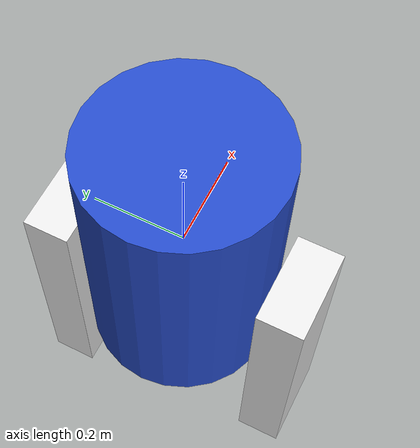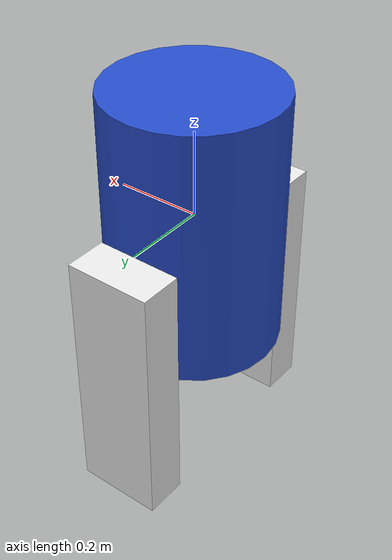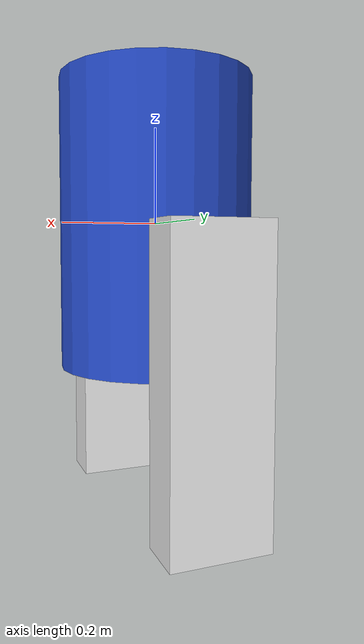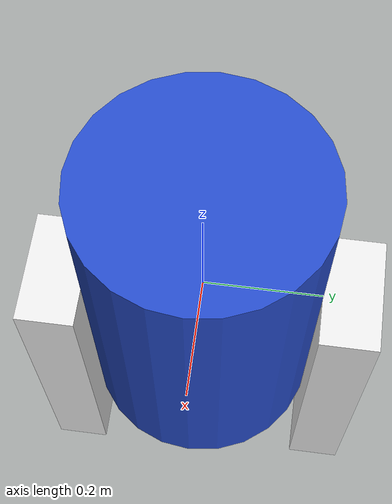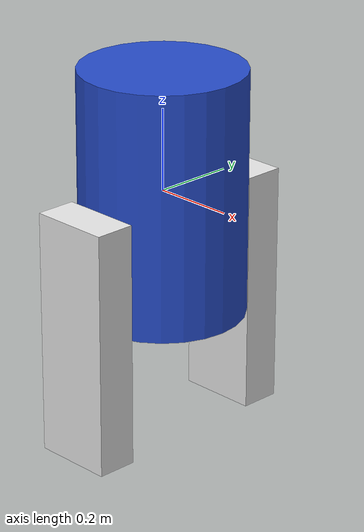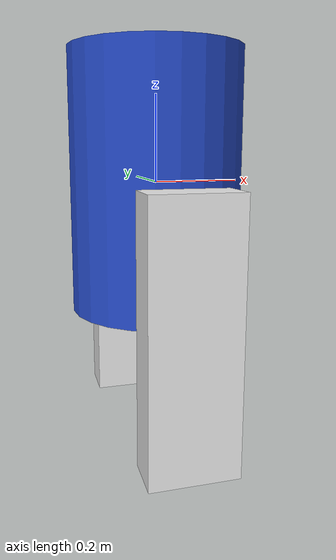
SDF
<?xml version='1.0'?>
<sdf version='1.6'>
  <model name='R2D2'>
    <link name='base_link'>
      <pose frame=''>0 -0 0 0 -0 0</pose>
      <inertial>
        <mass>1</mass>
        <inertia>
          <ixx>0.145833</ixx>
          <ixy>0</ixy>
          <ixz>0</ixz>
          <iyy>0.145833</iyy>
          <iyz>0</iyz>
          <izz>0.125</izz>
        </inertia>
        <pose frame=''>0 0 0 0 -0 0</pose>
      </inertial>
      <gravity>1</gravity>
      <self_collide>0</self_collide>
      <kinematic>0</kinematic>
      <visual name='visual'>
        <pose frame=''>0 0 0 0 -0 0</pose>
        <geometry>
          <cylinder>
            <radius>0.2</radius>
            <length>0.6</length>
          </cylinder>
        </geometry>
        <material>
          <lighting>1</lighting>
          <script>
            <uri>file://media/materials/scripts/gazebo.material</uri>
            <name>Gazebo/Blue</name>
          </script>
          <ambient>0.3 0.3 0.3 1</ambient>
          <diffuse>0.7 0.7 0.7 1</diffuse>
          <specular>0.01 0.01 0.01 1</specular>
          <emissive>0 0 0 1</emissive>
          <shader type='vertex'>
            <normal_map>__default__</normal_map>
          </shader>
        </material>
        <transparency>0</transparency>
        <cast_shadows>1</cast_shadows>
      </visual>
      <collision name='collision'>
        <laser_retro>0</laser_retro>
        <max_contacts>10</max_contacts>
        <pose frame=''>0 0 0 0 -0 0</pose>
        <geometry>
          <cylinder>
            <radius>0.2</radius>
            <length>0.6</length>
          </cylinder>
        </geometry>
        <surface>
          <friction>
            <ode>
              <mu>1</mu>
              <mu2>1</mu2>
              <fdir1>0 0 0</fdir1>
              <slip1>0</slip1>
              <slip2>0</slip2>
            </ode>
            <torsional>
              <coefficient>1</coefficient>
              <patch_radius>0</patch_radius>
              <surface_radius>0</surface_radius>
              <use_patch_radius>1</use_patch_radius>
              <ode>
                <slip>0</slip>
              </ode>
            </torsional>
          </friction>
          <bounce>
            <restitution_coefficient>0</restitution_coefficient>
            <threshold>1e+06</threshold>
          </bounce>
          <contact>
            <collide_without_contact>0</collide_without_contact>
            <collide_without_contact_bitmask>1</collide_without_contact_bitmask>
            <collide_bitmask>1</collide_bitmask>
            <ode>
              <soft_cfm>0</soft_cfm>
              <soft_erp>0.2</soft_erp>
              <kp>1e+13</kp>
              <kd>1</kd>
              <max_vel>0.01</max_vel>
              <min_depth>0</min_depth>
            </ode>
            <bullet>
              <split_impulse>1</split_impulse>
              <split_impulse_penetration_threshold>-0.01</split_impulse_penetration_threshold>
              <soft_cfm>0</soft_cfm>
              <soft_erp>0.2</soft_erp>
              <kp>1e+13</kp>
              <kd>1</kd>
            </bullet>
          </contact>
        </surface>
      </collision>
    </link>
    <link name='right_leg'>
      <pose frame=''>-0.013326 0.25 0 0 -0 0</pose>
      <inertial>
        <mass>1</mass>
        <inertia>
          <ixx>0.166667</ixx>
          <ixy>0</ixy>
          <ixz>0</ixz>
          <iyy>0.166667</iyy>
          <iyz>0</iyz>
          <izz>0.166667</izz>
        </inertia>
        <pose frame=''>0 0 0 0 -0 0</pose>
      </inertial>
      <gravity>1</gravity>
      <self_collide>0</self_collide>
      <kinematic>0</kinematic>
      <visual name='visual'>
        <pose frame=''>0 0 -0.3 0 1.57075 0</pose>
        <geometry>
          <box>
            <size>0.6 0.1 0.2</size>
          </box>
        </geometry>
        <material>
          <lighting>1</lighting>
          <script>
            <uri>file://media/materials/scripts/gazebo.material</uri>
            <name>Gazebo/White</name>
          </script>
          <ambient>0.3 0.3 0.3 1</ambient>
          <diffuse>0.7 0.7 0.7 1</diffuse>
          <specular>0.01 0.01 0.01 1</specular>
          <emissive>0 0 0 1</emissive>
          <shader type='vertex'>
            <normal_map>__default__</normal_map>
          </shader>
        </material>
        <transparency>0</transparency>
        <cast_shadows>1</cast_shadows>
      </visual>
      <collision name='collision'>
        <laser_retro>0</laser_retro>
        <max_contacts>10</max_contacts>
        <pose frame=''>0 0 -0.3 0 1.57075 0</pose>
        <geometry>
          <box>
            <size>0.6 0.1 0.2</size>
          </box>
        </geometry>
        <surface>
          <friction>
            <ode>
              <mu>1</mu>
              <mu2>1</mu2>
              <fdir1>0 0 0</fdir1>
              <slip1>0</slip1>
              <slip2>0</slip2>
            </ode>
            <torsional>
              <coefficient>1</coefficient>
              <patch_radius>0</patch_radius>
              <surface_radius>0</surface_radius>
              <use_patch_radius>1</use_patch_radius>
              <ode>
                <slip>0</slip>
              </ode>
            </torsional>
          </friction>
          <bounce>
            <restitution_coefficient>0</restitution_coefficient>
            <threshold>1e+06</threshold>
          </bounce>
          <contact>
            <collide_without_contact>0</collide_without_contact>
            <collide_without_contact_bitmask>1</collide_without_contact_bitmask>
            <collide_bitmask>1</collide_bitmask>
            <ode>
              <soft_cfm>0</soft_cfm>
              <soft_erp>0.2</soft_erp>
              <kp>1e+13</kp>
              <kd>1</kd>
              <max_vel>0.01</max_vel>
              <min_depth>0</min_depth>
            </ode>
            <bullet>
              <split_impulse>1</split_impulse>
              <split_impulse_penetration_threshold>-0.01</split_impulse_penetration_threshold>
              <soft_cfm>0</soft_cfm>
              <soft_erp>0.2</soft_erp>
              <kp>1e+13</kp>
              <kd>1</kd>
            </bullet>
          </contact>
        </surface>
      </collision>
    </link>
    <link name='left_leg'>
      <pose frame=''>0.006667 -0.25 0 0 -0 0</pose>
      <inertial>
        <mass>1</mass>
        <inertia>
          <ixx>0.166667</ixx>
          <ixy>0</ixy>
          <ixz>0</ixz>
          <iyy>0.166667</iyy>
          <iyz>0</iyz>
          <izz>0.166667</izz>
        </inertia>
        <pose frame=''>0 0 0 0 -0 0</pose>
      </inertial>
      <self_collide>0</self_collide>
      <kinematic>0</kinematic>
      <visual name='visual'>
        <pose frame=''>0 0 -0.3 0 1.57075 0</pose>
        <geometry>
          <box>
            <size>0.6 0.1 0.2</size>
          </box>
        </geometry>
        <material>
          <lighting>1</lighting>
          <script>
            <uri>file://media/materials/scripts/gazebo.material</uri>
            <name>Gazebo/White</name>
          </script>
          <ambient>0.3 0.3 0.3 1</ambient>
          <diffuse>0.7 0.7 0.7 1</diffuse>
          <specular>0.01 0.01 0.01 1</specular>
          <emissive>0 0 0 1</emissive>
          <shader type='vertex'>
            <normal_map>__default__</normal_map>
          </shader>
        </material>
        <transparency>0</transparency>
        <cast_shadows>1</cast_shadows>
      </visual>
      <collision name='collision'>
        <laser_retro>0</laser_retro>
        <max_contacts>10</max_contacts>
        <pose frame=''>0 0 -0.3 0 1.57075 0</pose>
        <geometry>
          <box>
            <size>0.6 0.1 0.2</size>
          </box>
        </geometry>
        <surface>
          <friction>
            <ode>
              <mu>1</mu>
              <mu2>1</mu2>
              <fdir1>0 0 0</fdir1>
              <slip1>0</slip1>
              <slip2>0</slip2>
            </ode>
            <torsional>
              <coefficient>1</coefficient>
              <patch_radius>0</patch_radius>
              <surface_radius>0</surface_radius>
              <use_patch_radius>1</use_patch_radius>
              <ode>
                <slip>0</slip>
              </ode>
            </torsional>
          </friction>
          <bounce>
            <restitution_coefficient>0</restitution_coefficient>
            <threshold>1e+06</threshold>
          </bounce>
          <contact>
            <collide_without_contact>0</collide_without_contact>
            <collide_without_contact_bitmask>1</collide_without_contact_bitmask>
            <collide_bitmask>1</collide_bitmask>
            <ode>
              <soft_cfm>0</soft_cfm>
              <soft_erp>0.2</soft_erp>
              <kp>1e+13</kp>
              <kd>1</kd>
              <max_vel>0.01</max_vel>
              <min_depth>0</min_depth>
            </ode>
            <bullet>
              <split_impulse>1</split_impulse>
              <split_impulse_penetration_threshold>-0.01</split_impulse_penetration_threshold>
              <soft_cfm>0</soft_cfm>
              <soft_erp>0.2</soft_erp>
              <kp>1e+13</kp>
              <kd>1</kd>
            </bullet>
          </contact>
        </surface>
      </collision>
    </link>
    <joint name='base_to_right_leg' type='fixed'>
      <parent>base_link</parent>
      <child>right_leg</child>
      <pose frame=''>0 -0.22 0.25 0 -0 0</pose>
      <physics>
        <ode>
          <limit>
            <cfm>0</cfm>
            <erp>0.2</erp>
          </limit>
          <suspension>
            <cfm>0</cfm>
            <erp>0.2</erp>
          </suspension>
        </ode>
      </physics>
    </joint>
    <joint name='base_to_left_leg' type='fixed'>
      <parent>base_link</parent>
      <child>left_leg</child>
      <pose frame=''>0 -0.22 0.25 0 -0 0</pose>
      <physics>
        <ode>
          <limit>
            <cfm>0</cfm>
            <erp>0.2</erp>
          </limit>
          <suspension>
            <cfm>0</cfm>
            <erp>0.2</erp>
          </suspension>
        </ode>
      </physics>
    </joint>
    <static>0</static>
    <allow_auto_disable>1</allow_auto_disable>
  </model>
</sdf>
